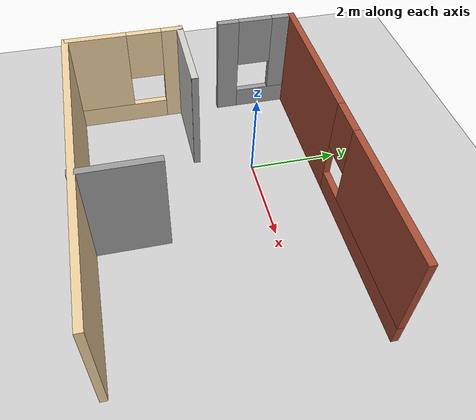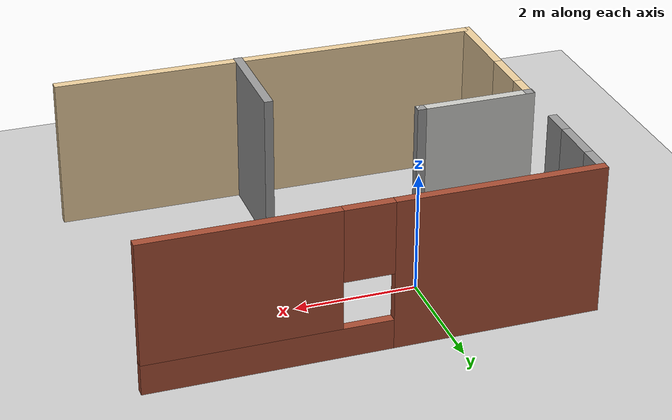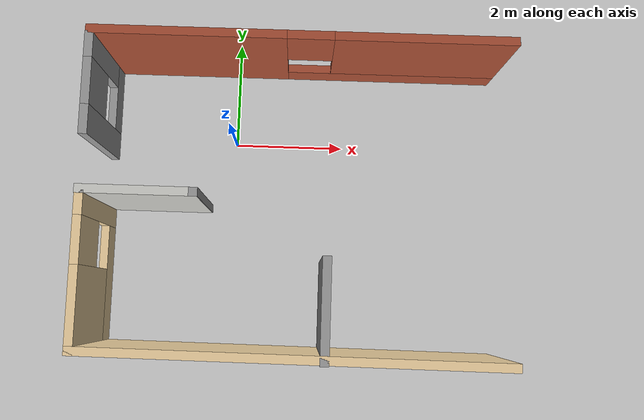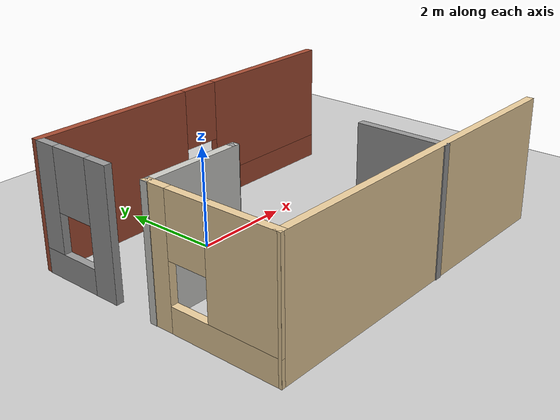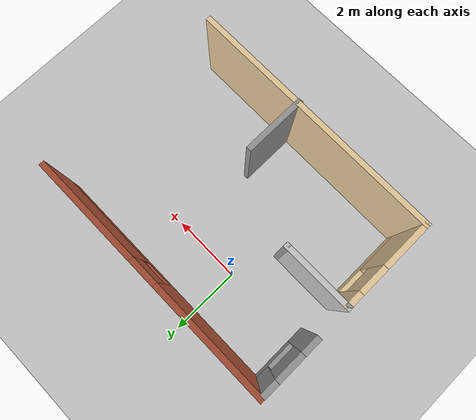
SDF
<sdf version="1.6">
 <world name="default">
  <model name="ground_plane">
   <static>1</static>
   <link name="link">
    <collision name="collision">
     <geometry><plane><normal>0 0 1</normal><size>100 100</size></plane></geometry>
     <surface><friction><ode><mu>100</mu><mu2>50</mu2></ode></friction></surface>
    </collision>
    <visual name="visual">
     <cast_shadows>0</cast_shadows>
     <geometry><plane><normal>0 0 1</normal><size>100 100</size></plane></geometry>
     <material>
      <script><uri>file://media/materials/scripts/gazebo.material</uri><name>Gazebo/Grey</name></script>
     </material>
    </visual>
   </link>
  </model>
  <model name="SLAMHome">
   <link name="Wall_1">
    <pose>-2.74721 -0.041047 0 0 -0 0</pose>
    <visual name="Wall_1_Visual">
     <pose>0 0 1.25 0 -0 0</pose>
     <geometry><box><size>0.15 0.15 2.5</size></box></geometry>
     <material>
      <script><uri>file://media/materials/scripts/gazebo.material</uri><name>Gazebo/Grey</name></script>
      <ambient>1 1 1 1</ambient>
      <diffuse>0.7 0.7 0.7 1</diffuse>
      <specular>0.01 0.01 0.01 1</specular>
      <emissive>0 0 0 1</emissive>
     </material>
    </visual>
    <collision name="Wall_1_Collision">
     <pose>0 0 1.25 0 -0 0</pose>
     <geometry><box><size>0.15 0.15 2.5</size></box></geometry>
     <surface>
      <friction>
       <ode><mu>1</mu><mu2>1</mu2><fdir1>0 0 0</fdir1><slip1>0</slip1><slip2>0</slip2></ode>
       <torsional>
        <coefficient>1</coefficient>
        <patch_radius>0</patch_radius>
        <surface_radius>0</surface_radius>
        <use_patch_radius>1</use_patch_radius>
        <ode><slip>0</slip></ode>
       </torsional>
      </friction>
      <bounce><restitution_coefficient>0</restitution_coefficient><threshold>1e+06</threshold></bounce>
      <contact>
       <collide_without_contact>0</collide_without_contact>
       <collide_without_contact_bitmask>1</collide_without_contact_bitmask>
       <collide_bitmask>1</collide_bitmask>
       <ode>
        <soft_cfm>0</soft_cfm>
        <soft_erp>0.2</soft_erp>
        <kp>1e+13</kp>
        <kd>1</kd>
        <max_vel>0.01</max_vel>
        <min_depth>0</min_depth>
       </ode>
       <bullet>
        <split_impulse>1</split_impulse>
        <split_impulse_penetration_threshold>-0.01</split_impulse_penetration_threshold>
        <soft_cfm>0</soft_cfm>
        <soft_erp>0.2</soft_erp>
        <kp>1e+13</kp>
        <kd>1</kd>
       </bullet>
      </contact>
     </surface>
    </collision>
   </link>
   <link name="Wall_13">
    <pose>-4.59721 -0.041047 0 0 -0 0</pose>
    <visual name="Wall_13_Visual">
     <pose>0 0 1.25 0 -0 0</pose>
     <geometry><box><size>0.15 0.15 2.5</size></box></geometry>
     <material>
      <script><uri>file://media/materials/scripts/gazebo.material</uri><name>Gazebo/Grey</name></script>
      <ambient>1 1 1 1</ambient>
      <diffuse>0.7 0.7 0.7 1</diffuse>
      <specular>0.01 0.01 0.01 1</specular>
      <emissive>0 0 0 1</emissive>
     </material>
    </visual>
    <collision name="Wall_13_Collision">
     <pose>0 0 1.25 0 -0 0</pose>
     <geometry><box><size>0.15 0.15 2.5</size></box></geometry>
     <surface>
      <friction>
       <ode><mu>1</mu><mu2>1</mu2><fdir1>0 0 0</fdir1><slip1>0</slip1><slip2>0</slip2></ode>
       <torsional>
        <coefficient>1</coefficient>
        <patch_radius>0</patch_radius>
        <surface_radius>0</surface_radius>
        <use_patch_radius>1</use_patch_radius>
        <ode><slip>0</slip></ode>
       </torsional>
      </friction>
      <bounce><restitution_coefficient>0</restitution_coefficient><threshold>1e+06</threshold></bounce>
      <contact>
       <collide_without_contact>0</collide_without_contact>
       <collide_without_contact_bitmask>1</collide_without_contact_bitmask>
       <collide_bitmask>1</collide_bitmask>
       <ode>
        <soft_cfm>0</soft_cfm>
        <soft_erp>0.2</soft_erp>
        <kp>1e+13</kp>
        <kd>1</kd>
        <max_vel>0.01</max_vel>
        <min_depth>0</min_depth>
       </ode>
       <bullet>
        <split_impulse>1</split_impulse>
        <split_impulse_penetration_threshold>-0.01</split_impulse_penetration_threshold>
        <soft_cfm>0</soft_cfm>
        <soft_erp>0.2</soft_erp>
        <kp>1e+13</kp>
        <kd>1</kd>
       </bullet>
      </contact>
     </surface>
    </collision>
   </link>
   <link name="Wall_15">
    <pose>-4.59721 -1.34105 0 0 0 -1.5708</pose>
    <visual name="Wall_15_Visual_1">
     <pose>0.252997 0 0.25 0 -0 0</pose>
     <geometry><box><size>2.24401 0.15 0.5</size></box></geometry>
     <material>
      <script><uri>file://media/materials/scripts/gazebo.material</uri><name>Gazebo/Grey</name></script>
      <ambient>0.921569 0.807843 0.615686 1</ambient>
      <diffuse>0.7 0.7 0.7 1</diffuse>
      <specular>0.01 0.01 0.01 1</specular>
      <emissive>0 0 0 1</emissive>
     </material>
    </visual>
    <visual name="Wall_15_Visual_0">
     <pose>-1.122 0 1.25 0 -0 0</pose>
     <geometry><box><size>0.505993 0.15 2.5</size></box></geometry>
     <material>
      <script><uri>file://media/materials/scripts/gazebo.material</uri><name>Gazebo/Grey</name></script>
      <ambient>0.921569 0.807843 0.615686 1</ambient>
      <diffuse>0.7 0.7 0.7 1</diffuse>
      <specular>0.01 0.01 0.01 1</specular>
      <emissive>0 0 0 1</emissive>
     </material>
    </visual>
    <visual name="Wall_15_Visual_2">
     <pose>0.652997 0 1.5 0 -0 0</pose>
     <geometry><box><size>1.44401 0.15 2</size></box></geometry>
     <material>
      <script><uri>file://media/materials/scripts/gazebo.material</uri><name>Gazebo/Grey</name></script>
      <ambient>0.921569 0.807843 0.615686 1</ambient>
      <diffuse>0.7 0.7 0.7 1</diffuse>
      <specular>0.01 0.01 0.01 1</specular>
      <emissive>0 0 0 1</emissive>
     </material>
    </visual>
    <visual name="Wall_15_Visual_3">
     <pose>-0.469007 0 1.9 0 -0 0</pose>
     <geometry><box><size>0.8 0.15 1.2</size></box></geometry>
     <material>
      <script><uri>file://media/materials/scripts/gazebo.material</uri><name>Gazebo/Grey</name></script>
      <ambient>0.921569 0.807843 0.615686 1</ambient>
      <diffuse>0.7 0.7 0.7 1</diffuse>
      <specular>0.01 0.01 0.01 1</specular>
      <emissive>0 0 0 1</emissive>
     </material>
    </visual>
    <collision name="Wall_15_Collision_0">
     <pose>-1.122 0 1.25 0 -0 0</pose>
     <geometry><box><size>0.505993 0.15 2.5</size></box></geometry>
     <surface>
      <friction>
       <ode><mu>1</mu><mu2>1</mu2><fdir1>0 0 0</fdir1><slip1>0</slip1><slip2>0</slip2></ode>
       <torsional>
        <coefficient>1</coefficient>
        <patch_radius>0</patch_radius>
        <surface_radius>0</surface_radius>
        <use_patch_radius>1</use_patch_radius>
        <ode><slip>0</slip></ode>
       </torsional>
      </friction>
      <bounce><restitution_coefficient>0</restitution_coefficient><threshold>1e+06</threshold></bounce>
      <contact>
       <collide_without_contact>0</collide_without_contact>
       <collide_without_contact_bitmask>1</collide_without_contact_bitmask>
       <collide_bitmask>1</collide_bitmask>
       <ode>
        <soft_cfm>0</soft_cfm>
        <soft_erp>0.2</soft_erp>
        <kp>1e+13</kp>
        <kd>1</kd>
        <max_vel>0.01</max_vel>
        <min_depth>0</min_depth>
       </ode>
       <bullet>
        <split_impulse>1</split_impulse>
        <split_impulse_penetration_threshold>-0.01</split_impulse_penetration_threshold>
        <soft_cfm>0</soft_cfm>
        <soft_erp>0.2</soft_erp>
        <kp>1e+13</kp>
        <kd>1</kd>
       </bullet>
      </contact>
     </surface>
    </collision>
    <collision name="Wall_15_Collision_2">
     <pose>0.652997 0 1.5 0 -0 0</pose>
     <geometry><box><size>1.44401 0.15 2</size></box></geometry>
     <surface>
      <friction>
       <ode><mu>1</mu><mu2>1</mu2><fdir1>0 0 0</fdir1><slip1>0</slip1><slip2>0</slip2></ode>
       <torsional>
        <coefficient>1</coefficient>
        <patch_radius>0</patch_radius>
        <surface_radius>0</surface_radius>
        <use_patch_radius>1</use_patch_radius>
        <ode><slip>0</slip></ode>
       </torsional>
      </friction>
      <bounce><restitution_coefficient>0</restitution_coefficient><threshold>1e+06</threshold></bounce>
      <contact>
       <collide_without_contact>0</collide_without_contact>
       <collide_without_contact_bitmask>1</collide_without_contact_bitmask>
       <collide_bitmask>1</collide_bitmask>
       <ode>
        <soft_cfm>0</soft_cfm>
        <soft_erp>0.2</soft_erp>
        <kp>1e+13</kp>
        <kd>1</kd>
        <max_vel>0.01</max_vel>
        <min_depth>0</min_depth>
       </ode>
       <bullet>
        <split_impulse>1</split_impulse>
        <split_impulse_penetration_threshold>-0.01</split_impulse_penetration_threshold>
        <soft_cfm>0</soft_cfm>
        <soft_erp>0.2</soft_erp>
        <kp>1e+13</kp>
        <kd>1</kd>
       </bullet>
      </contact>
     </surface>
    </collision>
    <collision name="Wall_15_Collision_1">
     <pose>0.252997 0 0.25 0 -0 0</pose>
     <geometry><box><size>2.24401 0.15 0.5</size></box></geometry>
     <surface>
      <friction>
       <ode><mu>1</mu><mu2>1</mu2><fdir1>0 0 0</fdir1><slip1>0</slip1><slip2>0</slip2></ode>
       <torsional>
        <coefficient>1</coefficient>
        <patch_radius>0</patch_radius>
        <surface_radius>0</surface_radius>
        <use_patch_radius>1</use_patch_radius>
        <ode><slip>0</slip></ode>
       </torsional>
      </friction>
      <bounce><restitution_coefficient>0</restitution_coefficient><threshold>1e+06</threshold></bounce>
      <contact>
       <collide_without_contact>0</collide_without_contact>
       <collide_without_contact_bitmask>1</collide_without_contact_bitmask>
       <collide_bitmask>1</collide_bitmask>
       <ode>
        <soft_cfm>0</soft_cfm>
        <soft_erp>0.2</soft_erp>
        <kp>1e+13</kp>
        <kd>1</kd>
        <max_vel>0.01</max_vel>
        <min_depth>0</min_depth>
       </ode>
       <bullet>
        <split_impulse>1</split_impulse>
        <split_impulse_penetration_threshold>-0.01</split_impulse_penetration_threshold>
        <soft_cfm>0</soft_cfm>
        <soft_erp>0.2</soft_erp>
        <kp>1e+13</kp>
        <kd>1</kd>
       </bullet>
      </contact>
     </surface>
    </collision>
    <collision name="Wall_15_Collision_3">
     <pose>-0.469007 0 1.9 0 -0 0</pose>
     <geometry><box><size>0.8 0.15 1.2</size></box></geometry>
     <surface>
      <friction>
       <ode><mu>1</mu><mu2>1</mu2><fdir1>0 0 0</fdir1><slip1>0</slip1><slip2>0</slip2></ode>
       <torsional>
        <coefficient>1</coefficient>
        <patch_radius>0</patch_radius>
        <surface_radius>0</surface_radius>
        <use_patch_radius>1</use_patch_radius>
        <ode><slip>0</slip></ode>
       </torsional>
      </friction>
      <bounce><restitution_coefficient>0</restitution_coefficient><threshold>1e+06</threshold></bounce>
      <contact>
       <collide_without_contact>0</collide_without_contact>
       <collide_without_contact_bitmask>1</collide_without_contact_bitmask>
       <collide_bitmask>1</collide_bitmask>
       <ode>
        <soft_cfm>0</soft_cfm>
        <soft_erp>0.2</soft_erp>
        <kp>1e+13</kp>
        <kd>1</kd>
        <max_vel>0.01</max_vel>
        <min_depth>0</min_depth>
       </ode>
       <bullet>
        <split_impulse>1</split_impulse>
        <split_impulse_penetration_threshold>-0.01</split_impulse_penetration_threshold>
        <soft_cfm>0</soft_cfm>
        <soft_erp>0.2</soft_erp>
        <kp>1e+13</kp>
        <kd>1</kd>
       </bullet>
      </contact>
     </surface>
    </collision>
   </link>
   <link name="Wall_16">
    <pose>-1.04721 -2.66116 0 0 0 -0.005666</pose>
    <visual name="Wall_16_Visual">
     <pose>0 0 1.25 0 -0 0</pose>
     <geometry><box><size>7.25 0.15 2.5</size></box></geometry>
     <material>
      <script><uri>file://media/materials/scripts/gazebo.material</uri><name>Gazebo/Grey</name></script>
      <ambient>0.921569 0.807843 0.615686 1</ambient>
      <diffuse>0.7 0.7 0.7 1</diffuse>
      <specular>0.01 0.01 0.01 1</specular>
      <emissive>0 0 0 1</emissive>
     </material>
    </visual>
    <collision name="Wall_16_Collision">
     <pose>0 0 1.25 0 -0 0</pose>
     <geometry><box><size>7.25 0.15 2.5</size></box></geometry>
     <surface>
      <friction>
       <ode><mu>1</mu><mu2>1</mu2><fdir1>0 0 0</fdir1><slip1>0</slip1><slip2>0</slip2></ode>
       <torsional>
        <coefficient>1</coefficient>
        <patch_radius>0</patch_radius>
        <surface_radius>0</surface_radius>
        <use_patch_radius>1</use_patch_radius>
        <ode><slip>0</slip></ode>
       </torsional>
      </friction>
      <bounce><restitution_coefficient>0</restitution_coefficient><threshold>1e+06</threshold></bounce>
      <contact>
       <collide_without_contact>0</collide_without_contact>
       <collide_without_contact_bitmask>1</collide_without_contact_bitmask>
       <collide_bitmask>1</collide_bitmask>
       <ode>
        <soft_cfm>0</soft_cfm>
        <soft_erp>0.2</soft_erp>
        <kp>1e+13</kp>
        <kd>1</kd>
        <max_vel>0.01</max_vel>
        <min_depth>0</min_depth>
       </ode>
       <bullet>
        <split_impulse>1</split_impulse>
        <split_impulse_penetration_threshold>-0.01</split_impulse_penetration_threshold>
        <soft_cfm>0</soft_cfm>
        <soft_erp>0.2</soft_erp>
        <kp>1e+13</kp>
        <kd>1</kd>
       </bullet>
      </contact>
     </surface>
    </collision>
   </link>
   <link name="Wall_2">
    <pose>-3.68221 -0.041047 0 0 -0 3.14159</pose>
    <visual name="Wall_2_Visual">
     <pose>0 0 1.25 0 -0 0</pose>
     <geometry><box><size>2 0.15 2.5</size></box></geometry>
     <material>
      <script><uri>file://media/materials/scripts/gazebo.material</uri><name>Gazebo/CeilingTiled</name></script>
      <ambient>1 1 1 1</ambient>
      <diffuse>1 1 1 1</diffuse>
      <specular>0 0 0 1</specular>
      <emissive>0 0 0 1</emissive>
     </material>
    </visual>
    <collision name="Wall_2_Collision">
     <pose>0 0 1.25 0 -0 0</pose>
     <geometry><box><size>2 0.15 2.5</size></box></geometry>
     <surface>
      <friction>
       <ode><mu>1</mu><mu2>1</mu2><fdir1>0 0 0</fdir1><slip1>0</slip1><slip2>0</slip2></ode>
       <torsional>
        <coefficient>1</coefficient>
        <patch_radius>0</patch_radius>
        <surface_radius>0</surface_radius>
        <use_patch_radius>1</use_patch_radius>
        <ode><slip>0</slip></ode>
       </torsional>
      </friction>
      <bounce><restitution_coefficient>0</restitution_coefficient><threshold>1e+06</threshold></bounce>
      <contact>
       <collide_without_contact>0</collide_without_contact>
       <collide_without_contact_bitmask>1</collide_without_contact_bitmask>
       <collide_bitmask>1</collide_bitmask>
       <ode>
        <soft_cfm>0</soft_cfm>
        <soft_erp>0.2</soft_erp>
        <kp>1e+13</kp>
        <kd>1</kd>
        <max_vel>0.01</max_vel>
        <min_depth>0</min_depth>
       </ode>
       <bullet>
        <split_impulse>1</split_impulse>
        <split_impulse_penetration_threshold>-0.01</split_impulse_penetration_threshold>
        <soft_cfm>0</soft_cfm>
        <soft_erp>0.2</soft_erp>
        <kp>1e+13</kp>
        <kd>1</kd>
       </bullet>
      </contact>
     </surface>
    </collision>
   </link>
   <link name="Wall_31">
    <pose>-0.536177 -1.882 0 0 0 -1.5708</pose>
    <visual name="Wall_31_Visual">
     <pose>0 0 1.25 0 -0 0</pose>
     <geometry><box><size>1.75 0.15 2.5</size></box></geometry>
     <material>
      <script><uri>file://media/materials/scripts/gazebo.material</uri><name>Gazebo/Grey</name></script>
      <ambient>1 1 1 1</ambient>
      <diffuse>0.7 0.7 0.7 1</diffuse>
      <specular>0.01 0.01 0.01 1</specular>
      <emissive>0 0 0 1</emissive>
     </material>
    </visual>
    <collision name="Wall_31_Collision">
     <pose>0 0 1.25 0 -0 0</pose>
     <geometry><box><size>1.75 0.15 2.5</size></box></geometry>
     <surface>
      <friction>
       <ode><mu>1</mu><mu2>1</mu2><fdir1>0 0 0</fdir1><slip1>0</slip1><slip2>0</slip2></ode>
       <torsional>
        <coefficient>1</coefficient>
        <patch_radius>0</patch_radius>
        <surface_radius>0</surface_radius>
        <use_patch_radius>1</use_patch_radius>
        <ode><slip>0</slip></ode>
       </torsional>
      </friction>
      <bounce><restitution_coefficient>0</restitution_coefficient><threshold>1e+06</threshold></bounce>
      <contact>
       <collide_without_contact>0</collide_without_contact>
       <collide_without_contact_bitmask>1</collide_without_contact_bitmask>
       <collide_bitmask>1</collide_bitmask>
       <ode>
        <soft_cfm>0</soft_cfm>
        <soft_erp>0.2</soft_erp>
        <kp>1e+13</kp>
        <kd>1</kd>
        <max_vel>0.01</max_vel>
        <min_depth>0</min_depth>
       </ode>
       <bullet>
        <split_impulse>1</split_impulse>
        <split_impulse_penetration_threshold>-0.01</split_impulse_penetration_threshold>
        <soft_cfm>0</soft_cfm>
        <soft_erp>0.2</soft_erp>
        <kp>1e+13</kp>
        <kd>1</kd>
       </bullet>
      </contact>
     </surface>
    </collision>
   </link>
   <link name="Wall_39">
    <pose>-4.60461 1.73418 0 0 -0 1.5708</pose>
    <visual name="Wall_39_Visual_0">
     <pose>-0.6235 0 1.25 0 -0 0</pose>
     <geometry><box><size>0.503 0.15 2.5</size></box></geometry>
     <material>
      <script><uri>file://media/materials/scripts/gazebo.material</uri><name>Gazebo/Grey</name></script>
      <ambient>1 1 1 1</ambient>
      <diffuse>0.7 0.7 0.7 1</diffuse>
      <specular>0.01 0.01 0.01 1</specular>
      <emissive>0 0 0 1</emissive>
     </material>
    </visual>
    <visual name="Wall_39_Visual_1">
     <pose>0.2515 0 0.25 0 -0 0</pose>
     <geometry><box><size>1.247 0.15 0.5</size></box></geometry>
     <material>
      <script><uri>file://media/materials/scripts/gazebo.material</uri><name>Gazebo/Grey</name></script>
      <ambient>1 1 1 1</ambient>
      <diffuse>0.7 0.7 0.7 1</diffuse>
      <specular>0.01 0.01 0.01 1</specular>
      <emissive>0 0 0 1</emissive>
     </material>
    </visual>
    <visual name="Wall_39_Visual_2">
     <pose>0.6515 0 1.5 0 -0 0</pose>
     <geometry><box><size>0.447 0.15 2</size></box></geometry>
     <material>
      <script><uri>file://media/materials/scripts/gazebo.material</uri><name>Gazebo/Grey</name></script>
      <ambient>1 1 1 1</ambient>
      <diffuse>0.7 0.7 0.7 1</diffuse>
      <specular>0.01 0.01 0.01 1</specular>
      <emissive>0 0 0 1</emissive>
     </material>
    </visual>
    <visual name="Wall_39_Visual_3">
     <pose>0.028 0 1.9 0 -0 0</pose>
     <geometry><box><size>0.8 0.15 1.2</size></box></geometry>
     <material>
      <script><uri>file://media/materials/scripts/gazebo.material</uri><name>Gazebo/Grey</name></script>
      <ambient>1 1 1 1</ambient>
      <diffuse>0.7 0.7 0.7 1</diffuse>
      <specular>0.01 0.01 0.01 1</specular>
      <emissive>0 0 0 1</emissive>
     </material>
    </visual>
    <collision name="Wall_39_Collision_0">
     <pose>-0.6235 0 1.25 0 -0 0</pose>
     <geometry><box><size>0.503 0.15 2.5</size></box></geometry>
     <surface>
      <friction>
       <ode><mu>1</mu><mu2>1</mu2><fdir1>0 0 0</fdir1><slip1>0</slip1><slip2>0</slip2></ode>
       <torsional>
        <coefficient>1</coefficient>
        <patch_radius>0</patch_radius>
        <surface_radius>0</surface_radius>
        <use_patch_radius>1</use_patch_radius>
        <ode><slip>0</slip></ode>
       </torsional>
      </friction>
      <bounce><restitution_coefficient>0</restitution_coefficient><threshold>1e+06</threshold></bounce>
      <contact>
       <collide_without_contact>0</collide_without_contact>
       <collide_without_contact_bitmask>1</collide_without_contact_bitmask>
       <collide_bitmask>1</collide_bitmask>
       <ode>
        <soft_cfm>0</soft_cfm>
        <soft_erp>0.2</soft_erp>
        <kp>1e+13</kp>
        <kd>1</kd>
        <max_vel>0.01</max_vel>
        <min_depth>0</min_depth>
       </ode>
       <bullet>
        <split_impulse>1</split_impulse>
        <split_impulse_penetration_threshold>-0.01</split_impulse_penetration_threshold>
        <soft_cfm>0</soft_cfm>
        <soft_erp>0.2</soft_erp>
        <kp>1e+13</kp>
        <kd>1</kd>
       </bullet>
      </contact>
     </surface>
    </collision>
    <collision name="Wall_39_Collision_2">
     <pose>0.6515 0 1.5 0 -0 0</pose>
     <geometry><box><size>0.447 0.15 2</size></box></geometry>
     <surface>
      <friction>
       <ode><mu>1</mu><mu2>1</mu2><fdir1>0 0 0</fdir1><slip1>0</slip1><slip2>0</slip2></ode>
       <torsional>
        <coefficient>1</coefficient>
        <patch_radius>0</patch_radius>
        <surface_radius>0</surface_radius>
        <use_patch_radius>1</use_patch_radius>
        <ode><slip>0</slip></ode>
       </torsional>
      </friction>
      <bounce><restitution_coefficient>0</restitution_coefficient><threshold>1e+06</threshold></bounce>
      <contact>
       <collide_without_contact>0</collide_without_contact>
       <collide_without_contact_bitmask>1</collide_without_contact_bitmask>
       <collide_bitmask>1</collide_bitmask>
       <ode>
        <soft_cfm>0</soft_cfm>
        <soft_erp>0.2</soft_erp>
        <kp>1e+13</kp>
        <kd>1</kd>
        <max_vel>0.01</max_vel>
        <min_depth>0</min_depth>
       </ode>
       <bullet>
        <split_impulse>1</split_impulse>
        <split_impulse_penetration_threshold>-0.01</split_impulse_penetration_threshold>
        <soft_cfm>0</soft_cfm>
        <soft_erp>0.2</soft_erp>
        <kp>1e+13</kp>
        <kd>1</kd>
       </bullet>
      </contact>
     </surface>
    </collision>
    <collision name="Wall_39_Collision_1">
     <pose>0.2515 0 0.25 0 -0 0</pose>
     <geometry><box><size>1.247 0.15 0.5</size></box></geometry>
     <surface>
      <friction>
       <ode><mu>1</mu><mu2>1</mu2><fdir1>0 0 0</fdir1><slip1>0</slip1><slip2>0</slip2></ode>
       <torsional>
        <coefficient>1</coefficient>
        <patch_radius>0</patch_radius>
        <surface_radius>0</surface_radius>
        <use_patch_radius>1</use_patch_radius>
        <ode><slip>0</slip></ode>
       </torsional>
      </friction>
      <bounce><restitution_coefficient>0</restitution_coefficient><threshold>1e+06</threshold></bounce>
      <contact>
       <collide_without_contact>0</collide_without_contact>
       <collide_without_contact_bitmask>1</collide_without_contact_bitmask>
       <collide_bitmask>1</collide_bitmask>
       <ode>
        <soft_cfm>0</soft_cfm>
        <soft_erp>0.2</soft_erp>
        <kp>1e+13</kp>
        <kd>1</kd>
        <max_vel>0.01</max_vel>
        <min_depth>0</min_depth>
       </ode>
       <bullet>
        <split_impulse>1</split_impulse>
        <split_impulse_penetration_threshold>-0.01</split_impulse_penetration_threshold>
        <soft_cfm>0</soft_cfm>
        <soft_erp>0.2</soft_erp>
        <kp>1e+13</kp>
        <kd>1</kd>
       </bullet>
      </contact>
     </surface>
    </collision>
    <collision name="Wall_39_Collision_3">
     <pose>0.028 0 1.9 0 -0 0</pose>
     <geometry><box><size>0.8 0.15 1.2</size></box></geometry>
     <surface>
      <friction>
       <ode><mu>1</mu><mu2>1</mu2><fdir1>0 0 0</fdir1><slip1>0</slip1><slip2>0</slip2></ode>
       <torsional>
        <coefficient>1</coefficient>
        <patch_radius>0</patch_radius>
        <surface_radius>0</surface_radius>
        <use_patch_radius>1</use_patch_radius>
        <ode><slip>0</slip></ode>
       </torsional>
      </friction>
      <bounce><restitution_coefficient>0</restitution_coefficient><threshold>1e+06</threshold></bounce>
      <contact>
       <collide_without_contact>0</collide_without_contact>
       <collide_without_contact_bitmask>1</collide_without_contact_bitmask>
       <collide_bitmask>1</collide_bitmask>
       <ode>
        <soft_cfm>0</soft_cfm>
        <soft_erp>0.2</soft_erp>
        <kp>1e+13</kp>
        <kd>1</kd>
        <max_vel>0.01</max_vel>
        <min_depth>0</min_depth>
       </ode>
       <bullet>
        <split_impulse>1</split_impulse>
        <split_impulse_penetration_threshold>-0.01</split_impulse_penetration_threshold>
        <soft_cfm>0</soft_cfm>
        <soft_erp>0.2</soft_erp>
        <kp>1e+13</kp>
        <kd>1</kd>
       </bullet>
      </contact>
     </surface>
    </collision>
   </link>
   <link name="Wall_4">
    <pose>-1.04721 2.64895 0 0 -0 0</pose>
    <visual name="Wall_4_Visual_0">
     <pose>-1.94255 0 1.25 0 -0 0</pose>
     <geometry><box><size>3.3649 0.15 2.5</size></box></geometry>
     <material>
      <script><uri>file://media/materials/scripts/gazebo.material</uri><name>Gazebo/Bricks</name></script>
      <ambient>1 1 1 1</ambient>
      <diffuse>1 1 1 1</diffuse>
      <specular>0.2 0.2 0.2 1</specular>
      <emissive>0 0 0 1</emissive>
     </material>
    </visual>
    <visual name="Wall_4_Visual_1">
     <pose>1.68245 0 0.25 0 -0 0</pose>
     <geometry><box><size>3.8851 0.15 0.5</size></box></geometry>
     <material>
      <script><uri>file://media/materials/scripts/gazebo.material</uri><name>Gazebo/Bricks</name></script>
      <ambient>1 1 1 1</ambient>
      <diffuse>1 1 1 1</diffuse>
      <specular>0.2 0.2 0.2 1</specular>
      <emissive>0 0 0 1</emissive>
     </material>
    </visual>
    <visual name="Wall_4_Visual_2">
     <pose>2.08245 0 1.5 0 -0 0</pose>
     <geometry><box><size>3.0851 0.15 2</size></box></geometry>
     <material>
      <script><uri>file://media/materials/scripts/gazebo.material</uri><name>Gazebo/Bricks</name></script>
      <ambient>1 1 1 1</ambient>
      <diffuse>1 1 1 1</diffuse>
      <specular>0.2 0.2 0.2 1</specular>
      <emissive>0 0 0 1</emissive>
     </material>
    </visual>
    <visual name="Wall_4_Visual_3">
     <pose>0.139901 0 1.9 0 -0 0</pose>
     <geometry><box><size>0.8 0.15 1.2</size></box></geometry>
     <material>
      <script><uri>file://media/materials/scripts/gazebo.material</uri><name>Gazebo/Bricks</name></script>
      <ambient>1 1 1 1</ambient>
      <diffuse>1 1 1 1</diffuse>
      <specular>0.2 0.2 0.2 1</specular>
      <emissive>0 0 0 1</emissive>
     </material>
    </visual>
    <collision name="Wall_4_Collision_0">
     <pose>-1.94255 0 1.25 0 -0 0</pose>
     <geometry><box><size>3.3649 0.15 2.5</size></box></geometry>
     <surface>
      <friction>
       <ode><mu>1</mu><mu2>1</mu2><fdir1>0 0 0</fdir1><slip1>0</slip1><slip2>0</slip2></ode>
       <torsional>
        <coefficient>1</coefficient>
        <patch_radius>0</patch_radius>
        <surface_radius>0</surface_radius>
        <use_patch_radius>1</use_patch_radius>
        <ode><slip>0</slip></ode>
       </torsional>
      </friction>
      <bounce><restitution_coefficient>0</restitution_coefficient><threshold>1e+06</threshold></bounce>
      <contact>
       <collide_without_contact>0</collide_without_contact>
       <collide_without_contact_bitmask>1</collide_without_contact_bitmask>
       <collide_bitmask>1</collide_bitmask>
       <ode>
        <soft_cfm>0</soft_cfm>
        <soft_erp>0.2</soft_erp>
        <kp>1e+13</kp>
        <kd>1</kd>
        <max_vel>0.01</max_vel>
        <min_depth>0</min_depth>
       </ode>
       <bullet>
        <split_impulse>1</split_impulse>
        <split_impulse_penetration_threshold>-0.01</split_impulse_penetration_threshold>
        <soft_cfm>0</soft_cfm>
        <soft_erp>0.2</soft_erp>
        <kp>1e+13</kp>
        <kd>1</kd>
       </bullet>
      </contact>
     </surface>
    </collision>
    <collision name="Wall_4_Collision_1">
     <pose>1.68245 0 0.25 0 -0 0</pose>
     <geometry><box><size>3.8851 0.15 0.5</size></box></geometry>
     <surface>
      <friction>
       <ode><mu>1</mu><mu2>1</mu2><fdir1>0 0 0</fdir1><slip1>0</slip1><slip2>0</slip2></ode>
       <torsional>
        <coefficient>1</coefficient>
        <patch_radius>0</patch_radius>
        <surface_radius>0</surface_radius>
        <use_patch_radius>1</use_patch_radius>
        <ode><slip>0</slip></ode>
       </torsional>
      </friction>
      <bounce><restitution_coefficient>0</restitution_coefficient><threshold>1e+06</threshold></bounce>
      <contact>
       <collide_without_contact>0</collide_without_contact>
       <collide_without_contact_bitmask>1</collide_without_contact_bitmask>
       <collide_bitmask>1</collide_bitmask>
       <ode>
        <soft_cfm>0</soft_cfm>
        <soft_erp>0.2</soft_erp>
        <kp>1e+13</kp>
        <kd>1</kd>
        <max_vel>0.01</max_vel>
        <min_depth>0</min_depth>
       </ode>
       <bullet>
        <split_impulse>1</split_impulse>
        <split_impulse_penetration_threshold>-0.01</split_impulse_penetration_threshold>
        <soft_cfm>0</soft_cfm>
        <soft_erp>0.2</soft_erp>
        <kp>1e+13</kp>
        <kd>1</kd>
       </bullet>
      </contact>
     </surface>
    </collision>
    <collision name="Wall_4_Collision_2">
     <pose>2.08245 0 1.5 0 -0 0</pose>
     <geometry><box><size>3.0851 0.15 2</size></box></geometry>
     <surface>
      <friction>
       <ode><mu>1</mu><mu2>1</mu2><fdir1>0 0 0</fdir1><slip1>0</slip1><slip2>0</slip2></ode>
       <torsional>
        <coefficient>1</coefficient>
        <patch_radius>0</patch_radius>
        <surface_radius>0</surface_radius>
        <use_patch_radius>1</use_patch_radius>
        <ode><slip>0</slip></ode>
       </torsional>
      </friction>
      <bounce><restitution_coefficient>0</restitution_coefficient><threshold>1e+06</threshold></bounce>
      <contact>
       <collide_without_contact>0</collide_without_contact>
       <collide_without_contact_bitmask>1</collide_without_contact_bitmask>
       <collide_bitmask>1</collide_bitmask>
       <ode>
        <soft_cfm>0</soft_cfm>
        <soft_erp>0.2</soft_erp>
        <kp>1e+13</kp>
        <kd>1</kd>
        <max_vel>0.01</max_vel>
        <min_depth>0</min_depth>
       </ode>
       <bullet>
        <split_impulse>1</split_impulse>
        <split_impulse_penetration_threshold>-0.01</split_impulse_penetration_threshold>
        <soft_cfm>0</soft_cfm>
        <soft_erp>0.2</soft_erp>
        <kp>1e+13</kp>
        <kd>1</kd>
       </bullet>
      </contact>
     </surface>
    </collision>
    <collision name="Wall_4_Collision_3">
     <pose>0.139901 0 1.9 0 -0 0</pose>
     <geometry><box><size>0.8 0.15 1.2</size></box></geometry>
     <surface>
      <friction>
       <ode><mu>1</mu><mu2>1</mu2><fdir1>0 0 0</fdir1><slip1>0</slip1><slip2>0</slip2></ode>
       <torsional>
        <coefficient>1</coefficient>
        <patch_radius>0</patch_radius>
        <surface_radius>0</surface_radius>
        <use_patch_radius>1</use_patch_radius>
        <ode><slip>0</slip></ode>
       </torsional>
      </friction>
      <bounce><restitution_coefficient>0</restitution_coefficient><threshold>1e+06</threshold></bounce>
      <contact>
       <collide_without_contact>0</collide_without_contact>
       <collide_without_contact_bitmask>1</collide_without_contact_bitmask>
       <collide_bitmask>1</collide_bitmask>
       <ode>
        <soft_cfm>0</soft_cfm>
        <soft_erp>0.2</soft_erp>
        <kp>1e+13</kp>
        <kd>1</kd>
        <max_vel>0.01</max_vel>
        <min_depth>0</min_depth>
       </ode>
       <bullet>
        <split_impulse>1</split_impulse>
        <split_impulse_penetration_threshold>-0.01</split_impulse_penetration_threshold>
        <soft_cfm>0</soft_cfm>
        <soft_erp>0.2</soft_erp>
        <kp>1e+13</kp>
        <kd>1</kd>
       </bullet>
      </contact>
     </surface>
    </collision>
   </link>
   <static>1</static>
   <pose>2.24517 -1.20416 0 0 -0 0</pose>
  </model>
 </world>
</sdf>
